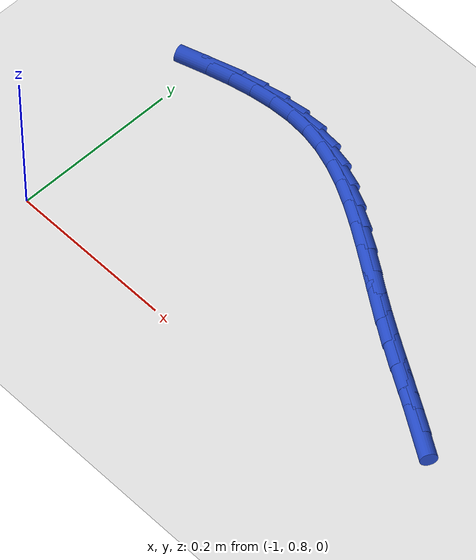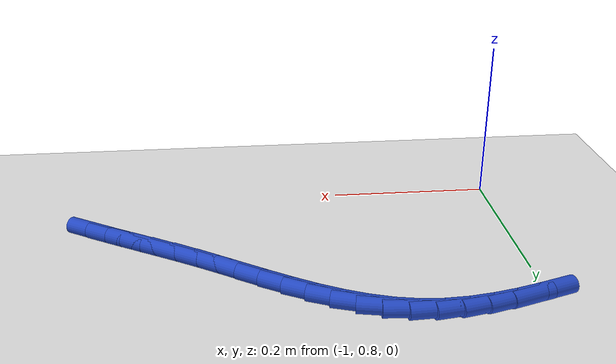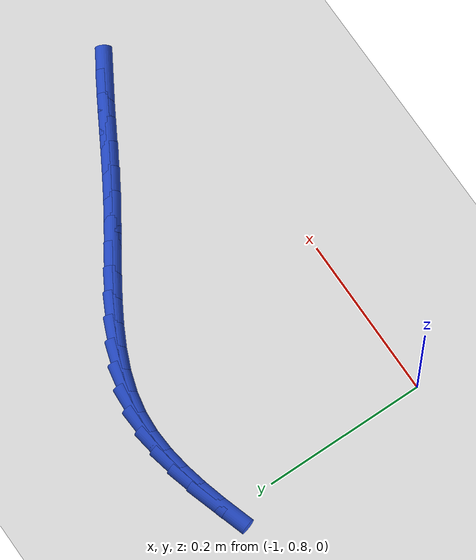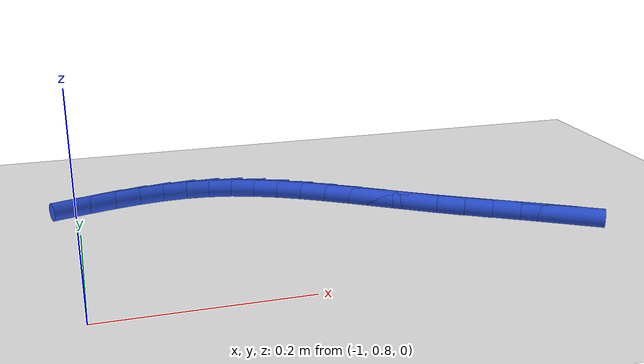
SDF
<sdf version="1.6">
 <world name="default">
  <model name="ground_plane">
   <static>1</static>
   <link name="link">
    <collision name="collision">
     <geometry><plane><normal>0 0 1</normal><size>100 100</size></plane></geometry>
     <surface><friction><ode><mu>100</mu><mu2>50</mu2></ode></friction></surface>
    </collision>
    <visual name="visual">
     <cast_shadows>0</cast_shadows>
     <geometry><plane><normal>0 0 1</normal><size>100 100</size></plane></geometry>
     <material>
      <script><uri>file://media/materials/scripts/gazebo.material</uri><name>Gazebo/WhiteGlow</name></script>
     </material>
    </visual>
   </link>
  </model>
  <model name="line">
   <link name="link_37">
    <pose>-0.49732852289385004 0.8876222166323794 0.01 0 1.57 -0.5443748927801129</pose>
    <collision name="collision">
     <geometry><cylinder><radius>0.01</radius><length>0.08</length></cylinder></geometry>
    </collision>
    <visual name="visual">
     <material>
      <script><name>Gazebo/Blue</name><uri>file://media/materials/scripts/gazebo.material</uri></script>
     </material>
     <geometry><cylinder><radius>0.01</radius><length>0.08</length></cylinder></geometry>
    </visual>
   </link>
   <link name="link_38">
    <pose>-0.5220530262145419 0.9025902370728528 0.01 0 1.57 -0.5290765007022975</pose>
    <collision name="collision">
     <geometry><cylinder><radius>0.01</radius><length>0.08</length></cylinder></geometry>
    </collision>
    <visual name="visual">
     <material>
      <script><name>Gazebo/Blue</name><uri>file://media/materials/scripts/gazebo.material</uri></script>
     </material>
     <geometry><cylinder><radius>0.01</radius><length>0.08</length></cylinder></geometry>
    </visual>
   </link>
   <link name="link_39">
    <pose>-0.5473101212190895 0.9173574833388245 0.01 0 1.57 -0.5243244929143375</pose>
    <collision name="collision">
     <geometry><cylinder><radius>0.01</radius><length>0.08</length></cylinder></geometry>
    </collision>
    <visual name="visual">
     <material>
      <script><name>Gazebo/Blue</name><uri>file://media/materials/scripts/gazebo.material</uri></script>
     </material>
     <geometry><cylinder><radius>0.01</radius><length>0.08</length></cylinder></geometry>
    </visual>
   </link>
   <link name="link_40">
    <pose>-0.5729000256386412 0.9321565933098743 0.01 0 1.57 -0.529771580305207</pose>
    <collision name="collision">
     <geometry><cylinder><radius>0.01</radius><length>0.08</length></cylinder></geometry>
    </collision>
    <visual name="visual">
     <material>
      <script><name>Gazebo/Blue</name><uri>file://media/materials/scripts/gazebo.material</uri></script>
     </material>
     <geometry><cylinder><radius>0.01</radius><length>0.08</length></cylinder></geometry>
    </visual>
   </link>
   <link name="link_41">
    <pose>-0.5986229572043453 0.9472202048655824 0.01 0 1.57 -0.5451931883106077</pose>
    <collision name="collision">
     <geometry><cylinder><radius>0.01</radius><length>0.08</length></cylinder></geometry>
    </collision>
    <visual name="visual">
     <material>
      <script><name>Gazebo/Blue</name><uri>file://media/materials/scripts/gazebo.material</uri></script>
     </material>
     <geometry><cylinder><radius>0.01</radius><length>0.08</length></cylinder></geometry>
    </visual>
   </link>
   <link name="link_42">
    <pose>-0.62427913364735 0.9627809558855289 0.01 0 1.57 -0.5679532677448654</pose>
    <collision name="collision">
     <geometry><cylinder><radius>0.01</radius><length>0.08</length></cylinder></geometry>
    </collision>
    <visual name="visual">
     <material>
      <script><name>Gazebo/Blue</name><uri>file://media/materials/scripts/gazebo.material</uri></script>
     </material>
     <geometry><cylinder><radius>0.01</radius><length>0.08</length></cylinder></geometry>
    </visual>
   </link>
   <link name="link_43">
    <pose>-0.6496974149469981 0.9789999727362018 0.01 0 1.57 -0.5817536383395939</pose>
    <collision name="collision">
     <geometry><cylinder><radius>0.01</radius><length>0.08</length></cylinder></geometry>
    </collision>
    <visual name="visual">
     <material>
      <script><name>Gazebo/Blue</name><uri>file://media/materials/scripts/gazebo.material</uri></script>
     </material>
     <geometry><cylinder><radius>0.01</radius><length>0.08</length></cylinder></geometry>
    </visual>
   </link>
   <link name="link_44">
    <pose>-0.6748938239948943 0.9955710894486532 0.01 0 1.57 -0.580198200061795</pose>
    <collision name="collision">
     <geometry><cylinder><radius>0.01</radius><length>0.08</length></cylinder></geometry>
    </collision>
    <visual name="visual">
     <material>
      <script><name>Gazebo/Blue</name><uri>file://media/materials/scripts/gazebo.material</uri></script>
     </material>
     <geometry><cylinder><radius>0.01</radius><length>0.08</length></cylinder></geometry>
    </visual>
   </link>
   <link name="link_45">
    <pose>-0.6999595523793434 1.0120004652875638 0.01 0 1.57 -0.5629480627219295</pose>
    <collision name="collision">
     <geometry><cylinder><radius>0.01</radius><length>0.08</length></cylinder></geometry>
    </collision>
    <visual name="visual">
     <material>
      <script><name>Gazebo/Blue</name><uri>file://media/materials/scripts/gazebo.material</uri></script>
     </material>
     <geometry><cylinder><radius>0.01</radius><length>0.08</length></cylinder></geometry>
    </visual>
   </link>
   <link name="link_46">
    <pose>-0.7249859949085495 1.0277937521355693 0.01 0 1.57 -0.5290763161988603</pose>
    <collision name="collision">
     <geometry><cylinder><radius>0.01</radius><length>0.08</length></cylinder></geometry>
    </collision>
    <visual name="visual">
     <material>
      <script><name>Gazebo/Blue</name><uri>file://media/materials/scripts/gazebo.material</uri></script>
     </material>
     <geometry><cylinder><radius>0.01</radius><length>0.08</length></cylinder></geometry>
    </visual>
   </link>
   <link name="link_47">
    <pose>-0.750064546390716 1.0424566018753052 0.01 0 1.57 -0.47710055481302543</pose>
    <collision name="collision">
     <geometry><cylinder><radius>0.01</radius><length>0.08</length></cylinder></geometry>
    </collision>
    <visual name="visual">
     <material>
      <script><name>Gazebo/Blue</name><uri>file://media/materials/scripts/gazebo.material</uri></script>
     </material>
     <geometry><cylinder><radius>0.01</radius><length>0.08</length></cylinder></geometry>
    </visual>
   </link>
   <link name="link_48">
    <pose>-0.7752866016340467 1.0554946663894065 0.01 0 1.57 -0.40518406008961466</pose>
    <collision name="collision">
     <geometry><cylinder><radius>0.01</radius><length>0.08</length></cylinder></geometry>
    </collision>
    <visual name="visual">
     <material>
      <script><name>Gazebo/Blue</name><uri>file://media/materials/scripts/gazebo.material</uri></script>
     </material>
     <geometry><cylinder><radius>0.01</radius><length>0.08</length></cylinder></geometry>
    </visual>
   </link>
   <link name="link_49">
    <pose>-0.8007435554467452 1.0664135975605085 0.01 0 1.57 -0.3116301116305825</pose>
    <collision name="collision">
     <geometry><cylinder><radius>0.01</radius><length>0.08</length></cylinder></geometry>
    </collision>
    <visual name="visual">
     <material>
      <script><name>Gazebo/Blue</name><uri>file://media/materials/scripts/gazebo.material</uri></script>
     </material>
     <geometry><cylinder><radius>0.01</radius><length>0.08</length></cylinder></geometry>
    </visual>
   </link>
   <link name="link_50">
    <pose>-0.826526802637016 1.0747190472712473 0.01 0 1.57 -0.19583292439934197</pose>
    <collision name="collision">
     <geometry><cylinder><radius>0.01</radius><length>0.08</length></cylinder></geometry>
    </collision>
    <visual name="visual">
     <material>
      <script><name>Gazebo/Blue</name><uri>file://media/materials/scripts/gazebo.material</uri></script>
     </material>
     <geometry><cylinder><radius>0.01</radius><length>0.08</length></cylinder></geometry>
    </visual>
   </link>
   <link name="link_51">
    <pose>-0.8527277380130621 1.079916667404258 0.01 0 1.57 -0.06571365874950474</pose>
    <collision name="collision">
     <geometry><cylinder><radius>0.01</radius><length>0.08</length></cylinder></geometry>
    </collision>
    <visual name="visual">
     <material>
      <script><name>Gazebo/Blue</name><uri>file://media/materials/scripts/gazebo.material</uri></script>
     </material>
     <geometry><cylinder><radius>0.01</radius><length>0.08</length></cylinder></geometry>
    </visual>
   </link>
   <link name="link_52">
    <pose>-0.8794116943631914 1.0816726962115064 0.01 0 1.57 0.04994334118425181</pose>
    <collision name="collision">
     <geometry><cylinder><radius>0.01</radius><length>0.08</length></cylinder></geometry>
    </collision>
    <visual name="visual">
     <material>
      <script><name>Gazebo/Blue</name><uri>file://media/materials/scripts/gazebo.material</uri></script>
     </material>
     <geometry><cylinder><radius>0.01</radius><length>0.08</length></cylinder></geometry>
    </visual>
   </link>
   <link name="link_53">
    <pose>-0.9065363228090589 1.080316874158518 0.01 0 1.57 0.14327675265308007</pose>
    <collision name="collision">
     <geometry><cylinder><radius>0.01</radius><length>0.08</length></cylinder></geometry>
    </collision>
    <visual name="visual">
     <material>
      <script><name>Gazebo/Blue</name><uri>file://media/materials/scripts/gazebo.material</uri></script>
     </material>
     <geometry><cylinder><radius>0.01</radius><length>0.08</length></cylinder></geometry>
    </visual>
   </link>
   <link name="link_54">
    <pose>-0.9340314675741436 1.0763502794980788 0.01 0 1.57 0.2152211155103689</pose>
    <collision name="collision">
     <geometry><cylinder><radius>0.01</radius><length>0.08</length></cylinder></geometry>
    </collision>
    <visual name="visual">
     <material>
      <script><name>Gazebo/Blue</name><uri>file://media/materials/scripts/gazebo.material</uri></script>
     </material>
     <geometry><cylinder><radius>0.01</radius><length>0.08</length></cylinder></geometry>
    </visual>
   </link>
   <link name="link_55">
    <pose>-0.9618269728479942 1.070273990692036 0.01 0 1.57 0.26763076164166005</pose>
    <collision name="collision">
     <geometry><cylinder><radius>0.01</radius><length>0.08</length></cylinder></geometry>
    </collision>
    <visual name="visual">
     <material>
      <script><name>Gazebo/Blue</name><uri>file://media/materials/scripts/gazebo.material</uri></script>
     </material>
     <geometry><cylinder><radius>0.01</radius><length>0.08</length></cylinder></geometry>
    </visual>
   </link>
   <link name="link_56">
    <pose>-0.9898526828201601 1.0625890862022378 0.01 0 1.57 0.3023803026855797</pose>
    <collision name="collision">
     <geometry><cylinder><radius>0.01</radius><length>0.08</length></cylinder></geometry>
    </collision>
    <visual name="visual">
     <material>
      <script><name>Gazebo/Blue</name><uri>file://media/materials/scripts/gazebo.material</uri></script>
     </material>
     <geometry><cylinder><radius>0.01</radius><length>0.08</length></cylinder></geometry>
    </visual>
   </link>
  </model>
 </world>
</sdf>
